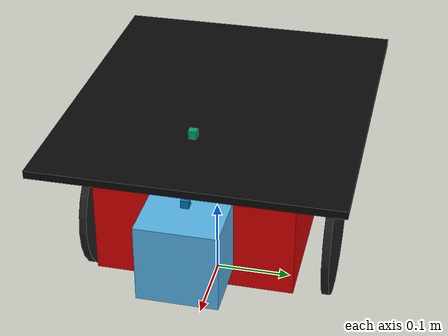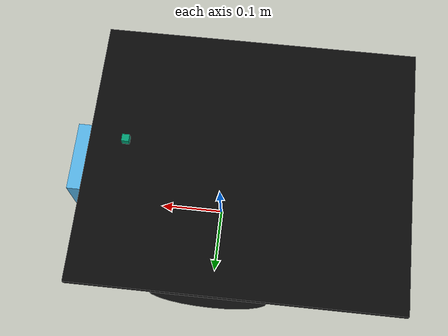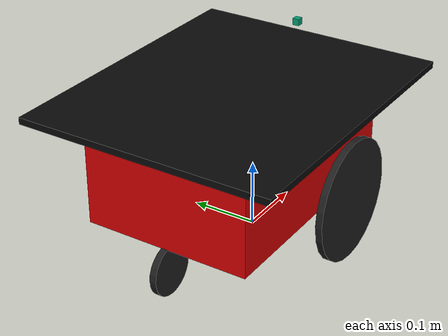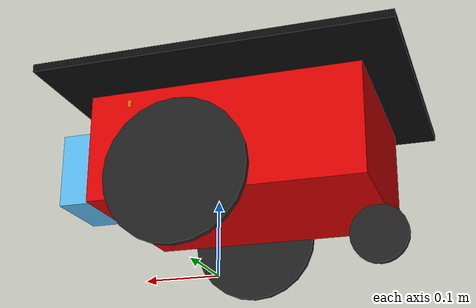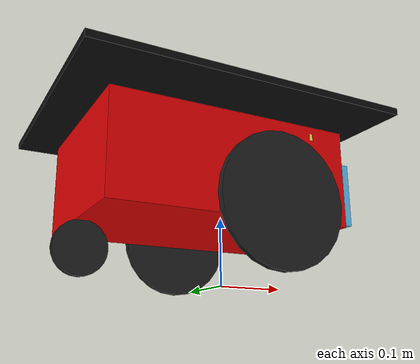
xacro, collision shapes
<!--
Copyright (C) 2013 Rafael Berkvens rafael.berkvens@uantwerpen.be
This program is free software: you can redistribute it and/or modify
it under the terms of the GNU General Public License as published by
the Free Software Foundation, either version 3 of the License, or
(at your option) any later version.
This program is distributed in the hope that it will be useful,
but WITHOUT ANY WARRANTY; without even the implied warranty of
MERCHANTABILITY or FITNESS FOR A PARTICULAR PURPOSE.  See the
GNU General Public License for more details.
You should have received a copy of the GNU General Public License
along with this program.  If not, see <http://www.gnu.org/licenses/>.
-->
<?xml version="1.0"?>
<robot name="pioneer3dx"
	xmlns:xacro="http://ros.org/wiki/xacro">
	<!-- import all gazebo-customization elements, including gazebo colors -->

	<!-- import the pioneer 3dx's wheels -->
	<xacro:include filename="$(find p3dx_description_gazebo)/urdf/pioneer3dx_wheel.xacro" />

	<!-- import imu -->
	<xacro:include filename="$(find p3dx_description_gazebo)/urdf/sensors/imu/imu.xacro"/>
	<xacro:include filename="$(find p3dx_description_gazebo)/urdf/sensors/imu/imu.gazebo"/>

	<!-- import ground truth -->
	<xacro:include filename="$(find p3dx_description_gazebo)/urdf/sensors/groundTruth/groundTruth.gazebo"/>

	<!-- import odometry -->
	<xacro:include filename="$(find p3dx_description_gazebo)/urdf/sensors/odometry/odometry.gazebo"/>

	<!-- import LiDAR-->
	<xacro:include filename="$(find p3dx_description_gazebo)/urdf/sensors/lidar/lidar.xacro"/>
	<xacro:include filename="$(find p3dx_description_gazebo)/urdf/sensors/lidar/lidar.gazebo"/>

	<!-- import camera -->
	<xacro:include filename="$(find p3dx_description_gazebo)/urdf/sensors/camera/camera.xacro"/>
	<xacro:include filename="$(find p3dx_description_gazebo)/urdf/sensors/camera/camera.gazebo"/>

	<!-- import sonar -->
	<!-- import sonar_1 -->
	<xacro:include filename="$(find p3dx_description_gazebo)/urdf/sensors/sonar/sonar_1.xacro"/>
	<xacro:include filename="$(find p3dx_description_gazebo)/urdf/sensors/sonar/sonar_1.gazebo"/>
	<!-- import sonar_2 -->
	<xacro:include filename="$(find p3dx_description_gazebo)/urdf/sensors/sonar/sonar_2.xacro"/>
	<xacro:include filename="$(find p3dx_description_gazebo)/urdf/sensors/sonar/sonar_2.gazebo"/>
	<!-- import sonar_3 -->
	<xacro:include filename="$(find p3dx_description_gazebo)/urdf/sensors/sonar/sonar_3.xacro"/>
	<xacro:include filename="$(find p3dx_description_gazebo)/urdf/sensors/sonar/sonar_3.gazebo"/>

	<!-- import chassis -->
	<xacro:include filename="$(find p3dx_description_gazebo)/urdf/parts/chassi/chassi.xacro"/>
	<xacro:include filename="$(find p3dx_description_gazebo)/urdf/parts/chassi/chassi.gazebo"/>

	<!-- import swivel -->
	<xacro:include filename="$(find p3dx_description_gazebo)/urdf/parts/swivel/swivel.xacro"/>
	<xacro:include filename="$(find p3dx_description_gazebo)/urdf/parts/swivel/swivel.gazebo"/>

	<!-- import top_plate -->
	<xacro:include filename="$(find p3dx_description_gazebo)/urdf/parts/top_plate/top_plate.xacro"/>
	<xacro:include filename="$(find p3dx_description_gazebo)/urdf/parts/top_plate/top_plate.gazebo"/>

	<!-- import center_hubcap -->
	<xacro:include filename="$(find p3dx_description_gazebo)/urdf/parts/center_hubcap/center_hubcap.xacro"/>
	<xacro:include filename="$(find p3dx_description_gazebo)/urdf/parts/center_hubcap/center_hubcap.gazebo"/>

	<!-- import center_wheel -->
	<xacro:include filename="$(find p3dx_description_gazebo)/urdf/parts/center_wheel/center_wheel.xacro"/>
	<xacro:include filename="$(find p3dx_description_gazebo)/urdf/parts/center_wheel/center_wheel.gazebo"/>

	<xacro:p3dx_wheel suffix="left" parent="base_link" reflect="-1"/>
	<xacro:p3dx_wheel suffix="right" parent="base_link" reflect="1"/>

	<!-- import front_sonar -->
	<xacro:include filename="$(find p3dx_description_gazebo)/urdf/parts/front_sonar/front_sonar.xacro"/>
	<xacro:include filename="$(find p3dx_description_gazebo)/urdf/parts/front_sonar/front_sonar.gazebo"/>

</robot>

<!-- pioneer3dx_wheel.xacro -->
<robot xmlns:xacro="http://ros.org/wiki/xacro">
	<!-- properties (constants) -->
	<xacro:property name="M_PI" value="3.14159" />
	<!-- right/left hubcap + wheel -->
	<xacro:macro name="p3dx_wheel" params="suffix parent reflect">
		<!-- wheel -->
		<link name="p3dx_${suffix}_wheel">
			<inertial>
				<mass value="0.5" />
				<origin xyz="0 0 0" />
				<inertia ixx="0.012411765597" ixy="0" ixz="0" iyy="0.015218160428" iyz="0" izz="0.011763977943" />
			</inertial>
			<visual>
				<origin xyz="0 0 0" rpy="0 0 0" />
				<geometry name="pioneer_geom">
					<mesh filename="package://p3dx_description_gazebo/meshes/${suffix}_wheel.stl" />
				</geometry>
				<material name="WheelBlack"></material>
			</visual>
			<collision>
				<origin xyz="0 0 0" rpy="${-3.1415927/2} 0 0" />
				<geometry>
					<cylinder radius="0.09" length="0.01" />
				</geometry>
			</collision>
		</link>
		<joint name="base_${suffix}_hubcap_joint" type="fixed">
			<origin xyz="0 0 0" rpy="0 0 0" />
			<parent link="p3dx_${suffix}_wheel" />
			<child link="p3dx_${suffix}_hubcap" />
		</joint>
		<!-- hubcap -->
		<link name="p3dx_${suffix}_hubcap">
			<inertial>
				<mass value="0.01" />
				<origin xyz="0 0 0" />
				<inertia ixx="0.012411765597" ixy="0" ixz="0" iyy="0.015218160428" iyz="0" izz="0.011763977943" />
			</inertial>
			<visual>
				<origin xyz="0 0 0" rpy="0 0 0" />
				<geometry name="pioneer_geom">
					<mesh filename="package://p3dx_description_gazebo/meshes/${suffix}_hubcap.stl" />
				</geometry>
				<material name="HubcapYellow">
					<color rgba="0.038 0.038 0.038 1.0" />
				</material>
			</visual>
			<collision>
				<origin xyz="0 0 0" rpy="0 0 0" />
				<geometry>
					<box size="0.00001 0.00001 0.00001" />
				</geometry>
			</collision>
		</link>
		<joint name="base_${suffix}_wheel_joint" type="continuous">
			<axis xyz="0 1 0" />
			<anchor xyz="0 0 0" />
			<limit effort="100" velocity="100" />
			<joint_properties damping="0.0" friction="0.0" />
			<origin xyz="0 ${reflect*0.158} 0.091" rpy="0 0 0" />
			<parent link="base_link" />
			<child link="p3dx_${suffix}_wheel" />
		</joint>
		<!-- gazebo elements -->
		<transmission name="${parent}_${suffix}_wheel_trans">
			<type>pr2_mechanism_model/SimpleTransmission</type>
			<joint name="base_${suffix}_wheel_joint">
				<hardwareInterface>hardware_interface/EffortJointInterface</hardwareInterface>
			</joint>
			<actuator name="base_${suffix}_wheel_motor">
				<hardwareInterface>EffortJointInterface</hardwareInterface>
				<mechanicalReduction>${reflect * 624/35 * 80/19}</mechanicalReduction>
			</actuator>
		</transmission>
		<gazebo reference="p3dx_${suffix}_hubcap">
			<material>Gazebo/Yellow</material>
		</gazebo>
		<gazebo reference="p3dx_${suffix}_wheel">
			<material>Gazebo/Black</material>
			<mu1>0.5</mu1>
			<mu2>50.0</mu2>
			<kp>100000000.0</kp>
			<kd>1.0</kd>
		</gazebo>
	</xacro:macro>
</robot>

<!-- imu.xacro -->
<robot xmlns:xacro="http://www.ros.org/wiki/xacro">

    <link name="base_IMU">
		<collision>
			<origin xyz="0 0 0" rpy="0 0 0"/>
			<geometry>
			<box size="0.0 0.0 0.0"/>
			</geometry>
		</collision>
		<visual>
			<origin xyz="0 0 0" rpy="0 0 0"/>
			<geometry>
				<box size="0.01 0.01 0.01"/>
			</geometry>
		</visual>
		<inertial>
			<mass value="1e-5" />
			<origin xyz="0 0 0" rpy="0 0 0"/>
			<inertia ixx="1e-6" ixy="0" ixz="0" iyy="1e-6" iyz="0"      izz="1e-6" />
		</inertial>
	</link>
	<joint name="IMU_joint" type="fixed">
		<axis xyz="0 1 0" />
		<origin rpy="0 0 0" xyz="0 0 0.09" />
		<parent link="base_link"/>
		<child link="base_IMU"/>
	</joint>
</robot>

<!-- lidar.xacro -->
<robot xmlns:xacro="http://www.ros.org/wiki/xacro">
    <!-- lms100 laser -->
	<link name="lms100">
		<inertial>
			<mass value="1e-5" />
			<origin xyz="0 0 0" rpy="0 0 0" />
			<inertia ixx="1e-6" ixy="0" ixz="0" iyy="1e-6" iyz="0" izz="1e-6" />
		</inertial>
		<visual>
			<origin xyz="0 0 0" rpy="0 0 0" />
			<geometry>
				<mesh filename="package://p3dx_description_gazebo/meshes/lms100.dae" />
			</geometry>
		</visual>
		<collision>
			<origin xyz="0 0 0" rpy="0 0 0" />
			<geometry>
				<box size="0.1 0.1 0.1" />
			</geometry>
		</collision>
	</link>
	<joint name="lms100_joint" type="fixed">
		<axis xyz="0 1 0" />
		<origin xyz="0.16 0 0.15" rpy="0 0 0" />
		<parent link="base_link" />
		<child link="lms100" />
	</joint>
</robot>

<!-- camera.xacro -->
<robot xmlns:xacro="http://www.ros.org/wiki/xacro">

    <link name="base_Cam">
            <collision>
                <origin xyz="0 0 0" rpy="0 0 0"/>
                <geometry>
                <box size="0.01 0.01 0.01"/>
                </geometry>
            </collision>
            <visual>
                <origin xyz="0 0 0" rpy="0 0 0"/>
                <geometry>
                    <mesh filename="package://p3dx_description_gazebo/meshes/kinect.dae" />
                </geometry>
            </visual>
            <inertial>,

                <mass value="1e-5" />
                <origin xyz="0 0 0" rpy="0 0 0"/>
                <inertia ixx="1e-6" ixy="0" ixz="0" iyy="1e-6" iyz="0"      izz="1e-6" />
            </inertial>
        </link>
        <joint name="Cam_joint" type="fixed">
            <axis xyz="0 1 0" />
            <origin xyz="0.12 0 0.28" rpy="0 0 0" />
            <parent link="base_link"/>
            <child link="base_Cam"/>
        </joint>
</robot>

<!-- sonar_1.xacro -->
<robot xmlns:xacro="http://www.ros.org/wiki/xacro">
    <link name="base_sonar_1">
        <collision>
        <origin xyz="0 0 0" rpy="0 0 0"/>
        <geometry>
            <box size="0.01 0.01 0.01"/>
        </geometry>
        </collision>
        <visual>
            <origin xyz="0 0 0" rpy="0 0 0"/>
            <geometry>
                <box size="0.01 0.01 0.01"/>
            </geometry>
        </visual>
        <inertial>
            <mass value="1e-5" />
            <origin xyz="0 0 0" rpy="0 0 0"/>
            <inertia ixx="1e-6" ixy="0" ixz="0" iyy="1e-6" iyz="0"      izz="1e-6" />
        </inertial>
    </link>
        <joint name="Sonar_1_joint" type="fixed">
            <axis xyz="0 1 0" />
            <origin xyz="0.08 -0.12 0.2" rpy="0 0 -1.57" />
            <parent link="base_link"/>
            <child link="base_sonar_1"/>
        </joint>
</robot>

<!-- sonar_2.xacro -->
<robot xmlns:xacro="http://www.ros.org/wiki/xacro">
    <link name="base_sonar_2">
		<collision>
		<origin xyz="0 0 0" rpy="0 0 0"/>
		<geometry>
			<box size="0.01 0.01 0.01"/>
		</geometry>
		</collision>
		<visual>
		<origin xyz="0 0 0" rpy="0 0 0"/>
		<geometry>
			<box size="0.01 0.01 0.01"/>
		</geometry>
		</visual>
		<inertial>
		<mass value="1e-5" />
		<origin xyz="0 0 0" rpy="0 0 0"/>
		<inertia ixx="1e-6" ixy="0" ixz="0" iyy="1e-6" iyz="0"      izz="1e-6" />
		</inertial>
	</link>
	<joint name="Sonar_2_joint" type="fixed">
		<axis xyz="0 1 0" />
		<origin xyz="0.16 0 0.21" rpy="0 0 0" />
		<parent link="base_link"/>
		<child link="base_sonar_2"/>
	</joint>
</robot>

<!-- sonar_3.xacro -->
<robot xmlns:xacro="http://www.ros.org/wiki/xacro">
    <link name="base_sonar_3">
		<collision>
		<origin xyz="0 0 0" rpy="0 0 0"/>
		<geometry>
			<box size="0.01 0.01 0.01"/>
		</geometry>
		</collision>
		<visual>
		<origin xyz="0 0 0" rpy="0 0 0"/>
		<geometry>
			<box size="0.01 0.01 0.01"/>
		</geometry>
		</visual>
		<inertial>
		<mass value="1e-5" />
		<origin xyz="0 0 0" rpy="0 0 0"/>
		<inertia ixx="1e-6" ixy="0" ixz="0" iyy="1e-6" iyz="0"      izz="1e-6" />
		</inertial>
	</link>
	<joint name="Sonar_3_joint" type="fixed">
		<axis xyz="0 1 0" />
		<origin xyz="0.08 0.12 0.2" rpy="0 0 1.57" />
		<parent link="base_link"/>
		<child link="base_sonar_3"/>
	</joint>
</robot>

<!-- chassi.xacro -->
<robot xmlns:xacro="http://www.ros.org/wiki/xacro">
    <link name="base_link">
            <inertial>
                <mass value="3.5" />
                <origin xyz="-0.05 0 0" />
                <inertia ixx="1" ixy="0" ixz="0" iyy="1" iyz="0" izz="1" />
            </inertial>
            <visual>
                <origin xyz="-0.045 0 0.148" rpy="0 0 0" />
                <geometry name="pioneer_geom">
                    <mesh filename="package://p3dx_description_gazebo/meshes/chassis.stl" />
                </geometry>
                <material name="ChassisRed">
                    <color rgba="0.851 0.0 0.0 1.0" />
                </material>
            </visual>
            <collision>
                <origin xyz="-0.045 0 0.145" rpy="0 0 0" />
                <geometry>
                    <box size="0.35 0.25 0.14" />
                </geometry>
            </collision>
        </link>
</robot>

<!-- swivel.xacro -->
<robot xmlns:xacro="http://www.ros.org/wiki/xacro">

    <link name="swivel">
		<inertial>
			<mass value="0.1" />
			<origin xyz="0 0 0" />
			<inertia ixx="0.01" ixy="0" ixz="0" iyy="0.01" iyz="0" izz="0.01" />
		</inertial>
		<visual>
			<origin xyz="0 0 0" rpy="0 0 0" />
			<geometry name="pioneer_geom">
				<mesh filename="package://p3dx_description_gazebo/meshes/swivel.stl" />
			</geometry>
			<material name="swivel">
				<color rgba="0.5 0.5 0.5 1" />
			</material>
		</visual>
		<collision>
			<origin xyz="0 0 0" rpy="0 0 0" />
			<geometry>
				<box size="0.00001 0.00001 0.00001" />
			</geometry>
		</collision>
	</link>
	<joint name="base_swivel_joint" type="fixed">
		<origin xyz="-0.185 0 0.055" rpy="0 0 0" />
		<axis xyz="0 0 1" />
		<anchor xyz="0 0 0" />
		<limit effort="100" velocity="100" k_velocity="0" />
		<joint_properties damping="0.0" friction="0.0" />
		<parent link="base_link" />
		<child link="swivel" />
	</joint>
</robot>

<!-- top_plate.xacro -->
<robot xmlns:xacro="http://www.ros.org/wiki/xacro">

   <link name="top_plate">
		<inertial>
			<mass value="0.01" />
			<origin xyz="0 0 0" />
			<inertia ixx="1" ixy="0" ixz="0" iyy="1" iyz="0" izz="1" />
		</inertial>
		<visual>
			<origin xyz="0 0 0" rpy="0 0 0" />
			<geometry name="top_geom">
				<mesh filename="package://p3dx_description_gazebo/meshes/top.stl" />
			</geometry>
			<material name="TopBlack">
				<color rgba="0.038 0.038 0.038 1.0" />
			</material>
		</visual>
		<collision>
			<origin xyz="0.0 0 0" rpy="0 0 0" />
			<geometry name="pioneer_geom">
				<box size="0.45 0.38 0.01" />
			</geometry>
		</collision>
	</link>
	<joint name="base_top_joint" type="fixed">
		<origin xyz="-0.045 0 0.234" rpy="0 0 0" />
		<parent link="base_link" />
		<child link="top_plate" />
	</joint>
</robot>

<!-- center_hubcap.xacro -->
<robot xmlns:xacro="http://www.ros.org/wiki/xacro">
   <link name="center_hubcap">
		<inertial>
			<mass value="0.01" />
			<origin xyz="0 0 0" />
			<inertia ixx="0.012411765597" ixy="-0.000711733678" ixz="0.00050272983" iyy="0.015218160428" iyz="-0.000004273467" izz="0.011763977943" />
		</inertial>
		<visual>
			<origin xyz="0 0 0" rpy="0 0 0" />
			<geometry name="pioneer_geom">
				<mesh filename="package://p3dx_description_gazebo/meshes/center_hubcap.stl" />
			</geometry>
			<material name="swivel">
				<color rgba="0.5 0.5 0.5 1" />
			</material>
		</visual>
		<collision>
			<origin xyz="0 0 0" rpy="0 0 0" />
			<geometry>
				<box size="0.00001 0.00001 0.00001" />
			</geometry>
		</collision>
	</link>
	<joint name="swivel_hubcap_joint" type="fixed">
		<origin xyz="-0.026 0 -0.016" rpy="0 0 0" />
		<axis xyz="0 1 0" />
		<anchor xyz="0 0 0" />
		<limit effort="100" velocity="100" k_velocity="0" />
		<joint_properties damping="0.0" friction="0.0" />
		<parent link="swivel" />
		<child link="center_wheel" />
	</joint>
</robot>

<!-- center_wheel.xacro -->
<robot xmlns:xacro="http://www.ros.org/wiki/xacro">

   <link name="center_wheel">
		<inertial>
			<mass value="1.0" />
			<origin xyz="0 0 0" />
			<inertia ixx="0.012411765597" ixy="-0.000711733678" ixz="0.00050272983" iyy="0.015218160428" iyz="-0.000004273467" izz="0.011763977943" />
		</inertial>
		<visual>
			<origin xyz="0 0 0" rpy="0 0 0" />
			<geometry name="pioneer_geom">
				<mesh filename="package://p3dx_description_gazebo/meshes/center_wheel.stl" />
			</geometry>
			<material name="WheelBlack">
				<color rgba="0.117 0.117 0.117 1" />
			</material>
		</visual>
		<collision>
			<origin xyz="0 0 0" rpy="${-3.1415927/2.0} 0 0" />
			<geometry>
				<cylinder radius="0.0375" length="0.01" />
			</geometry>
		</collision>
	</link>
	<joint name="center_wheel_joint" type="fixed">
		<origin xyz="-0.0035 0 -0.001" rpy="0 0 0"/>
		<parent link="center_wheel"/>
		<child link="center_hubcap"/>
	</joint>
</robot>

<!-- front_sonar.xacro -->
<robot xmlns:xacro="http://www.ros.org/wiki/xacro">

    <link name="front_sonar">
		<inertial>
			<mass value="0.0001" />
			<origin xyz="0 0 0" />
			<inertia ixx="1" ixy="0" ixz="0" iyy="1" iyz="0" izz="1" />
		</inertial>
		<visual>
			<origin rpy="0 0 0" xyz="0 0 0" />
			<geometry name="pioneer_geom">
				<mesh filename="package://p3dx_description_gazebo/meshes/front_sonar.stl" />
			</geometry>
			<material name="SonarYellow">
				<color rgba="0.715 0.583 0.210 1.0" />
			</material>
		</visual>
		<collision>
			<origin rpy="0 0 0" xyz="0 0 0" />
			<geometry>
				<box size="0.00001 0.00001 0.00001" />
			</geometry>
		</collision>
	</link>
	<joint name="base_front_joint" type="fixed">
		<origin rpy="0 0 0" xyz="0.109 0 0.209" />
		<parent link="base_link" />
		<child link="front_sonar" />
	</joint>
</robot>
